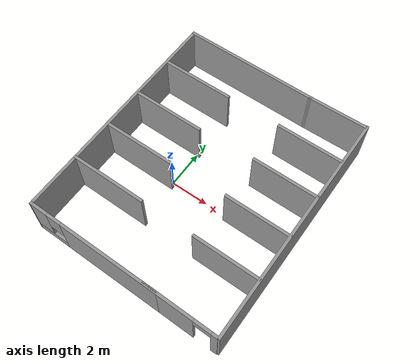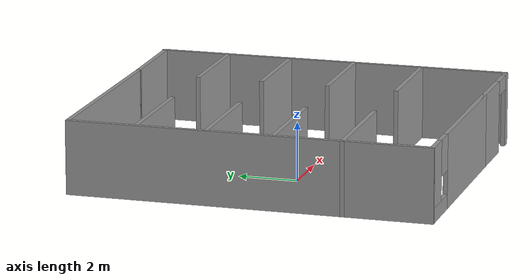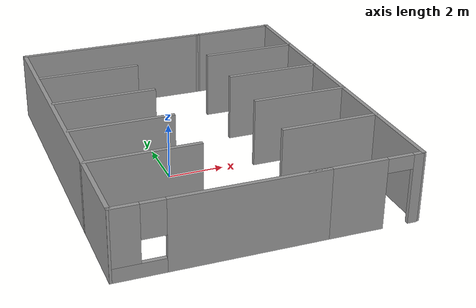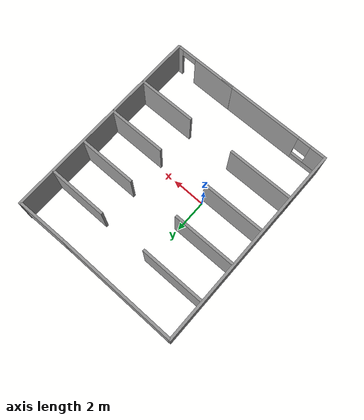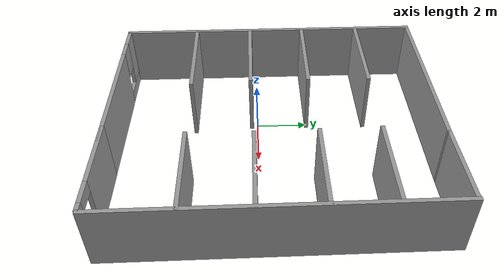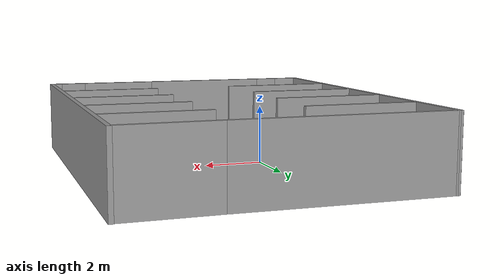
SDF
<?xml version='1.0'?>
<sdf version='1.7'>
  <model name='new_hospital'>
    <pose>1.48364 0.60853 0 0 -0 0</pose>
    <link name='Wall_0'>
      <collision name='Wall_0_Collision'>
        <geometry>
          <box>
            <size>12.3051 0.15 2.5</size>
          </box>
        </geometry>
        <pose>0 0 1.25 0 -0 0</pose>
      </collision>
      <visual name='Wall_0_Visual'>
        <pose>0 0 1.25 0 -0 0</pose>
        <geometry>
          <box>
            <size>12.3051 0.15 2.5</size>
          </box>
        </geometry>
        <material>
          <script>
            <uri>file://media/materials/scripts/gazebo.material</uri>
            <name>Gazebo/Grey</name>
          </script>
          <ambient>1 1 1 1</ambient>
        </material>
        <meta>
          <layer>0</layer>
        </meta>
      </visual>
      <pose>-5.0818 0.002297 0 0 -0 -1.5708</pose>
    </link>
    <link name='Wall_1'>
      <collision name='Wall_1_Collision'>
        <geometry>
          <box>
            <size>0.15 0.15 2.5</size>
          </box>
        </geometry>
        <pose>0 0 1.25 0 -0 0</pose>
      </collision>
      <visual name='Wall_1_Visual'>
        <pose>0 0 1.25 0 -0 0</pose>
        <geometry>
          <box>
            <size>0.15 0.15 2.5</size>
          </box>
        </geometry>
        <material>
          <script>
            <uri>file://media/materials/scripts/gazebo.material</uri>
            <name>Gazebo/Grey</name>
          </script>
          <ambient>1 1 1 1</ambient>
        </material>
        <meta>
          <layer>0</layer>
        </meta>
      </visual>
      <pose>-5.07745 -6.07527 0 0 -0 0</pose>
    </link>
    <link name='Wall_15'>
      <collision name='Wall_15_Collision'>
        <geometry>
          <box>
            <size>12.3753 0.15 2.5</size>
          </box>
        </geometry>
        <pose>0 0 1.25 0 -0 0</pose>
      </collision>
      <visual name='Wall_15_Visual'>
        <pose>0 0 1.25 0 -0 0</pose>
        <geometry>
          <box>
            <size>12.3753 0.15 2.5</size>
          </box>
        </geometry>
        <material>
          <script>
            <uri>file://media/materials/scripts/gazebo.material</uri>
            <name>Gazebo/Grey</name>
          </script>
          <ambient>1 1 1 1</ambient>
        </material>
        <meta>
          <layer>0</layer>
        </meta>
      </visual>
      <pose>5.06248 0.015457 0 0 -0 -1.56701</pose>
    </link>
    <link name='Wall_17'>
      <collision name='Wall_17_Collision'>
        <geometry>
          <box>
            <size>3.1412 0.15 2.5</size>
          </box>
        </geometry>
        <pose>0 0 1.25 0 -0 0</pose>
      </collision>
      <visual name='Wall_17_Visual'>
        <pose>0 0 1.25 0 -0 0</pose>
        <geometry>
          <box>
            <size>3.1412 0.15 2.5</size>
          </box>
        </geometry>
        <material>
          <script>
            <uri>file://media/materials/scripts/gazebo.material</uri>
            <name>Gazebo/Grey</name>
          </script>
          <ambient>1 1 1 1</ambient>
        </material>
        <meta>
          <layer>0</layer>
        </meta>
      </visual>
      <pose>3.45215 6.07474 0 0 -0 0.015185</pose>
    </link>
    <link name='Wall_19'>
      <collision name='Wall_19_Collision'>
        <geometry>
          <box>
            <size>3.75 0.15 2.5</size>
          </box>
        </geometry>
        <pose>0 0 1.25 0 -0 0</pose>
      </collision>
      <visual name='Wall_19_Visual'>
        <pose>0 0 1.25 0 -0 0</pose>
        <geometry>
          <box>
            <size>3.75 0.15 2.5</size>
          </box>
        </geometry>
        <material>
          <script>
            <uri>file://media/materials/scripts/gazebo.material</uri>
            <name>Gazebo/Grey</name>
          </script>
          <ambient>1 1 1 1</ambient>
        </material>
        <meta>
          <layer>0</layer>
        </meta>
      </visual>
      <pose>-3.14193 3.76721 0 0 -0 0</pose>
    </link>
    <link name='Wall_23'>
      <collision name='Wall_23_Collision'>
        <geometry>
          <box>
            <size>3.75 0.15 2.5</size>
          </box>
        </geometry>
        <pose>0 0 1.25 0 -0 0</pose>
      </collision>
      <visual name='Wall_23_Visual'>
        <pose>0 0 1.25 0 -0 0</pose>
        <geometry>
          <box>
            <size>3.75 0.15 2.5</size>
          </box>
        </geometry>
        <material>
          <script>
            <uri>file://media/materials/scripts/gazebo.material</uri>
            <name>Gazebo/Grey</name>
          </script>
          <ambient>1 1 1 1</ambient>
        </material>
        <meta>
          <layer>0</layer>
        </meta>
      </visual>
      <pose>-3.18338 1.40651 0 0 -0 0</pose>
    </link>
    <link name='Wall_26'>
      <collision name='Wall_26_Collision'>
        <geometry>
          <box>
            <size>3.75 0.15 2.5</size>
          </box>
        </geometry>
        <pose>0 0 1.25 0 -0 0</pose>
      </collision>
      <visual name='Wall_26_Visual'>
        <pose>0 0 1.25 0 -0 0</pose>
        <geometry>
          <box>
            <size>3.75 0.15 2.5</size>
          </box>
        </geometry>
        <material>
          <script>
            <uri>file://media/materials/scripts/gazebo.material</uri>
            <name>Gazebo/Grey</name>
          </script>
          <ambient>1 1 1 1</ambient>
        </material>
        <meta>
          <layer>0</layer>
        </meta>
      </visual>
      <pose>-3.20329 -0.847547 0 0 -0 0</pose>
    </link>
    <link name='Wall_29'>
      <collision name='Wall_29_Collision'>
        <geometry>
          <box>
            <size>4 0.15 2.5</size>
          </box>
        </geometry>
        <pose>0 0 1.25 0 -0 0</pose>
      </collision>
      <visual name='Wall_29_Visual'>
        <pose>0 0 1.25 0 -0 0</pose>
        <geometry>
          <box>
            <size>4 0.15 2.5</size>
          </box>
        </geometry>
        <material>
          <script>
            <uri>file://media/materials/scripts/gazebo.material</uri>
            <name>Gazebo/Grey</name>
          </script>
          <ambient>1 1 1 1</ambient>
        </material>
        <meta>
          <layer>0</layer>
        </meta>
      </visual>
      <pose>-3.16089 -3.14589 0 0 -0 0</pose>
    </link>
    <link name='Wall_3'>
      <collision name='Wall_3_Collision'>
        <geometry>
          <box>
            <size>7.18423 0.15 2.5</size>
          </box>
        </geometry>
        <pose>0 0 1.25 0 -0 0</pose>
      </collision>
      <visual name='Wall_3_Visual'>
        <pose>0 0 1.25 0 -0 0</pose>
        <geometry>
          <box>
            <size>7.18423 0.15 2.5</size>
          </box>
        </geometry>
        <material>
          <script>
            <uri>file://media/materials/scripts/gazebo.material</uri>
            <name>Gazebo/Grey</name>
          </script>
          <ambient>1 1 1 1</ambient>
        </material>
        <meta>
          <layer>0</layer>
        </meta>
      </visual>
      <pose>-1.56036 6.06595 0 0 -0 -0.003956</pose>
    </link>
    <link name='Wall_31'>
      <collision name='Wall_31_Collision'>
        <geometry>
          <box>
            <size>3.5 0.15 2.5</size>
          </box>
        </geometry>
        <pose>0 0 1.25 0 -0 0</pose>
      </collision>
      <visual name='Wall_31_Visual'>
        <pose>0 0 1.25 0 -0 0</pose>
        <geometry>
          <box>
            <size>3.5 0.15 2.5</size>
          </box>
        </geometry>
        <material>
          <script>
            <uri>file://media/materials/scripts/gazebo.material</uri>
            <name>Gazebo/Grey</name>
          </script>
          <ambient>1 1 1 1</ambient>
        </material>
        <meta>
          <layer>0</layer>
        </meta>
      </visual>
      <pose>3.29176 3.78007 0 0 -0 0</pose>
    </link>
    <link name='Wall_33'>
      <collision name='Wall_33_Collision'>
        <geometry>
          <box>
            <size>3.5 0.15 2.5</size>
          </box>
        </geometry>
        <pose>0 0 1.25 0 -0 0</pose>
      </collision>
      <visual name='Wall_33_Visual'>
        <pose>0 0 1.25 0 -0 0</pose>
        <geometry>
          <box>
            <size>3.5 0.15 2.5</size>
          </box>
        </geometry>
        <material>
          <script>
            <uri>file://media/materials/scripts/gazebo.material</uri>
            <name>Gazebo/Grey</name>
          </script>
          <ambient>1 1 1 1</ambient>
        </material>
        <meta>
          <layer>0</layer>
        </meta>
      </visual>
      <pose>3.35294 1.54698 0 0 -0 0</pose>
    </link>
    <link name='Wall_35'>
      <collision name='Wall_35_Collision'>
        <geometry>
          <box>
            <size>3.5 0.15 2.5</size>
          </box>
        </geometry>
        <pose>0 0 1.25 0 -0 0</pose>
      </collision>
      <visual name='Wall_35_Visual'>
        <pose>0 0 1.25 0 -0 0</pose>
        <geometry>
          <box>
            <size>3.5 0.15 2.5</size>
          </box>
        </geometry>
        <material>
          <script>
            <uri>file://media/materials/scripts/gazebo.material</uri>
            <name>Gazebo/Grey</name>
          </script>
          <ambient>1 1 1 1</ambient>
        </material>
        <meta>
          <layer>0</layer>
        </meta>
      </visual>
      <pose>3.37986 -0.751165 0 0 -0 0</pose>
    </link>
    <link name='Wall_37'>
      <collision name='Wall_37_Collision'>
        <geometry>
          <box>
            <size>3.5 0.15 2.5</size>
          </box>
        </geometry>
        <pose>0 0 1.25 0 -0 0</pose>
      </collision>
      <visual name='Wall_37_Visual'>
        <pose>0 0 1.25 0 -0 0</pose>
        <geometry>
          <box>
            <size>3.5 0.15 2.5</size>
          </box>
        </geometry>
        <material>
          <script>
            <uri>file://media/materials/scripts/gazebo.material</uri>
            <name>Gazebo/Grey</name>
          </script>
          <ambient>1 1 1 1</ambient>
        </material>
        <meta>
          <layer>0</layer>
        </meta>
      </visual>
      <pose>3.3491 -3.15075 0 0 -0 0</pose>
    </link>
    <link name='Wall_5'>
      <pose>-1.60662 -6.08918 0 0 -0 3.13758</pose>
      <visual name='Wall_5_Visual_0'>
        <pose>-0.897025 0 1.25 0 -0 0</pose>
        <geometry>
          <box>
            <size>5.29766 0.15 2.5</size>
          </box>
        </geometry>
        <material>
          <script>
            <uri>file://media/materials/scripts/gazebo.material</uri>
            <name>Gazebo/Grey</name>
          </script>
          <ambient>1 1 1 1</ambient>
        </material>
        <meta>
          <layer>0</layer>
        </meta>
      </visual>
      <collision name='Wall_5_Collision_0'>
        <geometry>
          <box>
            <size>5.29766 0.15 2.5</size>
          </box>
        </geometry>
        <pose>-0.897025 0 1.25 0 -0 0</pose>
      </collision>
      <visual name='Wall_5_Visual_1'>
        <pose>2.64883 0 0.25 0 -0 0</pose>
        <geometry>
          <box>
            <size>1.79405 0.15 0.5</size>
          </box>
        </geometry>
        <material>
          <script>
            <uri>file://media/materials/scripts/gazebo.material</uri>
            <name>Gazebo/Grey</name>
          </script>
          <ambient>1 1 1 1</ambient>
        </material>
        <meta>
          <layer>0</layer>
        </meta>
      </visual>
      <collision name='Wall_5_Collision_1'>
        <geometry>
          <box>
            <size>1.79405 0.15 0.5</size>
          </box>
        </geometry>
        <pose>2.64883 0 0.25 0 -0 0</pose>
      </collision>
      <visual name='Wall_5_Visual_2'>
        <pose>3.04883 0 1.5 0 -0 0</pose>
        <geometry>
          <box>
            <size>0.994051 0.15 2</size>
          </box>
        </geometry>
        <material>
          <script>
            <uri>file://media/materials/scripts/gazebo.material</uri>
            <name>Gazebo/Grey</name>
          </script>
          <ambient>1 1 1 1</ambient>
        </material>
        <meta>
          <layer>0</layer>
        </meta>
      </visual>
      <collision name='Wall_5_Collision_2'>
        <geometry>
          <box>
            <size>0.994051 0.15 2</size>
          </box>
        </geometry>
        <pose>3.04883 0 1.5 0 -0 0</pose>
      </collision>
      <visual name='Wall_5_Visual_3'>
        <pose>2.1518 0 1.9 0 -0 0</pose>
        <geometry>
          <box>
            <size>0.8 0.15 1.2</size>
          </box>
        </geometry>
        <material>
          <script>
            <uri>file://media/materials/scripts/gazebo.material</uri>
            <name>Gazebo/Grey</name>
          </script>
          <ambient>1 1 1 1</ambient>
        </material>
        <meta>
          <layer>0</layer>
        </meta>
      </visual>
      <collision name='Wall_5_Collision_3'>
        <geometry>
          <box>
            <size>0.8 0.15 1.2</size>
          </box>
        </geometry>
        <pose>2.1518 0 1.9 0 -0 0</pose>
      </collision>
    </link>
    <link name='Wall_8'>
      <pose>3.11412 -6.11242 0 0 -0 3.13346</pose>
      <visual name='Wall_8_Visual_0'>
        <pose>-1.78285 0 1.25 0 -0 0</pose>
        <geometry>
          <box>
            <size>0.343861 0.15 2.5</size>
          </box>
        </geometry>
        <material>
          <script>
            <uri>file://media/materials/scripts/gazebo.material</uri>
            <name>Gazebo/Grey</name>
          </script>
          <ambient>1 1 1 1</ambient>
        </material>
        <meta>
          <layer>0</layer>
        </meta>
      </visual>
      <collision name='Wall_8_Collision_0'>
        <geometry>
          <box>
            <size>0.343861 0.15 2.5</size>
          </box>
        </geometry>
        <pose>-1.78285 0 1.25 0 -0 0</pose>
      </collision>
      <visual name='Wall_8_Visual_1'>
        <pose>0.621931 0 1.25 0 -0 0</pose>
        <geometry>
          <box>
            <size>2.66569 0.15 2.5</size>
          </box>
        </geometry>
        <material>
          <script>
            <uri>file://media/materials/scripts/gazebo.material</uri>
            <name>Gazebo/Grey</name>
          </script>
          <ambient>1 1 1 1</ambient>
        </material>
        <meta>
          <layer>0</layer>
        </meta>
      </visual>
      <collision name='Wall_8_Collision_1'>
        <geometry>
          <box>
            <size>2.66569 0.15 2.5</size>
          </box>
        </geometry>
        <pose>0.621931 0 1.25 0 -0 0</pose>
      </collision>
      <visual name='Wall_8_Visual_2'>
        <pose>-1.16091 0 2.25 0 -0 0</pose>
        <geometry>
          <box>
            <size>0.9 0.15 0.5</size>
          </box>
        </geometry>
        <material>
          <script>
            <uri>file://media/materials/scripts/gazebo.material</uri>
            <name>Gazebo/Grey</name>
          </script>
          <ambient>1 1 1 1</ambient>
        </material>
        <meta>
          <layer>0</layer>
        </meta>
      </visual>
      <collision name='Wall_8_Collision_2'>
        <geometry>
          <box>
            <size>0.9 0.15 0.5</size>
          </box>
        </geometry>
        <pose>-1.16091 0 2.25 0 -0 0</pose>
      </collision>
    </link>
    <static>1</static>
  </model>
</sdf>
